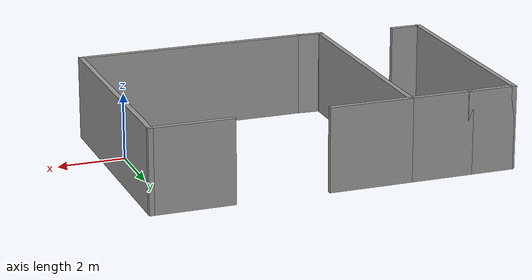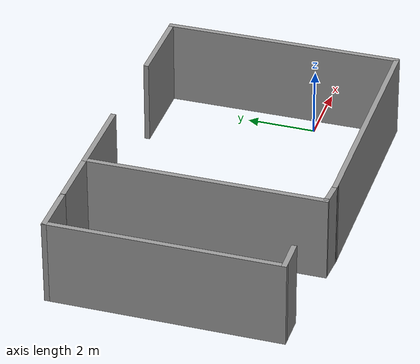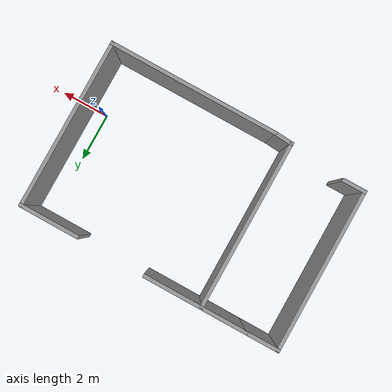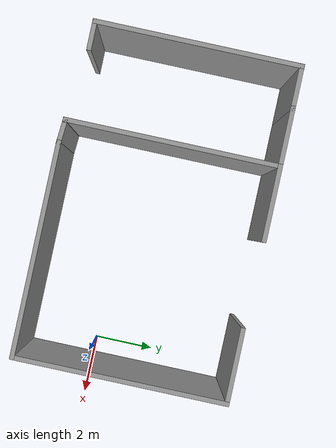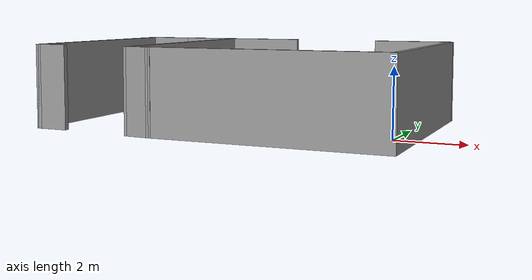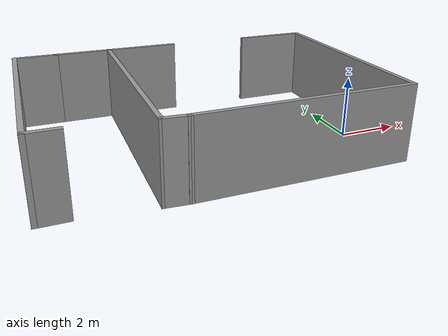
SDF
<?xml version='1.0'?>
<sdf version='1.7'>
  <model name='test_optimisation'>
    <pose>-4.77612 1.17859 0 0 -0 0</pose>
    <link name='Wall_0'>
      <collision name='Wall_0_Collision'>
        <geometry>
          <box>
            <size>7 0.15 2.5</size>
          </box>
        </geometry>
        <pose>0 0 1.25 0 -0 0</pose>
      </collision>
      <visual name='Wall_0_Visual'>
        <pose>0 0 1.25 0 -0 0</pose>
        <geometry>
          <box>
            <size>7 0.15 2.5</size>
          </box>
        </geometry>
        <material>
          <script>
            <uri>file://media/materials/scripts/gazebo.material</uri>
            <name>Gazebo/Grey</name>
          </script>
          <ambient>1 1 1 1</ambient>
        </material>
        <meta>
          <layer>0</layer>
        </meta>
      </visual>
      <pose>1.96112 -3.44859 0 0 -0 0</pose>
    </link>
    <link name='Wall_1'>
      <collision name='Wall_1_Collision'>
        <geometry>
          <box>
            <size>7 0.15 2.5</size>
          </box>
        </geometry>
        <pose>0 0 1.25 0 -0 0</pose>
      </collision>
      <visual name='Wall_1_Visual'>
        <pose>0 0 1.25 0 -0 0</pose>
        <geometry>
          <box>
            <size>7 0.15 2.5</size>
          </box>
        </geometry>
        <material>
          <script>
            <uri>file://media/materials/scripts/gazebo.material</uri>
            <name>Gazebo/Grey</name>
          </script>
          <ambient>1 1 1 1</ambient>
        </material>
        <meta>
          <layer>0</layer>
        </meta>
      </visual>
      <pose>5.38612 -0.023588 0 0 -0 1.5708</pose>
    </link>
    <link name='Wall_10'>
      <collision name='Wall_10_Collision'>
        <geometry>
          <box>
            <size>0.16 0.15 2.5</size>
          </box>
        </geometry>
        <pose>0 0 1.25 0 -0 0</pose>
      </collision>
      <visual name='Wall_10_Visual'>
        <pose>0 0 1.25 0 -0 0</pose>
        <geometry>
          <box>
            <size>0.16 0.15 2.5</size>
          </box>
        </geometry>
        <material>
          <script>
            <uri>file://media/materials/scripts/gazebo.material</uri>
            <name>Gazebo/Grey</name>
          </script>
          <ambient>1 1 1 1</ambient>
        </material>
        <meta>
          <layer>0</layer>
        </meta>
      </visual>
      <pose>-4.04112 3.45382 0 0 -0 0</pose>
    </link>
    <link name='Wall_11'>
      <collision name='Wall_11_Collision'>
        <geometry>
          <box>
            <size>1.5 0.15 2.5</size>
          </box>
        </geometry>
        <pose>0 0 1.25 0 -0 0</pose>
      </collision>
      <visual name='Wall_11_Visual'>
        <pose>0 0 1.25 0 -0 0</pose>
        <geometry>
          <box>
            <size>1.5 0.15 2.5</size>
          </box>
        </geometry>
        <material>
          <script>
            <uri>file://media/materials/scripts/gazebo.material</uri>
            <name>Gazebo/Grey</name>
          </script>
          <ambient>1 1 1 1</ambient>
        </material>
        <meta>
          <layer>0</layer>
        </meta>
      </visual>
      <pose>-4.71112 3.45382 0 0 -0 3.14159</pose>
    </link>
    <link name='Wall_12'>
      <collision name='Wall_12_Collision'>
        <geometry>
          <box>
            <size>6.75 0.15 2.5</size>
          </box>
        </geometry>
        <pose>0 0 1.25 0 -0 0</pose>
      </collision>
      <visual name='Wall_12_Visual'>
        <pose>0 0 1.25 0 -0 0</pose>
        <geometry>
          <box>
            <size>6.75 0.15 2.5</size>
          </box>
        </geometry>
        <material>
          <script>
            <uri>file://media/materials/scripts/gazebo.material</uri>
            <name>Gazebo/Grey</name>
          </script>
          <ambient>1 1 1 1</ambient>
        </material>
        <meta>
          <layer>0</layer>
        </meta>
      </visual>
      <pose>-5.38612 0.153819 0 0 -0 -1.5708</pose>
    </link>
    <link name='Wall_13'>
      <collision name='Wall_13_Collision'>
        <geometry>
          <box>
            <size>1 0.15 2.5</size>
          </box>
        </geometry>
        <pose>0 0 1.25 0 -0 0</pose>
      </collision>
      <visual name='Wall_13_Visual'>
        <pose>0 0 1.25 0 -0 0</pose>
        <geometry>
          <box>
            <size>1 0.15 2.5</size>
          </box>
        </geometry>
        <material>
          <script>
            <uri>file://media/materials/scripts/gazebo.material</uri>
            <name>Gazebo/Grey</name>
          </script>
          <ambient>1 1 1 1</ambient>
        </material>
        <meta>
          <layer>0</layer>
        </meta>
      </visual>
      <pose>-4.96112 -3.14618 0 0 -0 0</pose>
    </link>
    <link name='Wall_2'>
      <collision name='Wall_2_Collision'>
        <geometry>
          <box>
            <size>2.5 0.15 2.5</size>
          </box>
        </geometry>
        <pose>0 0 1.25 0 -0 0</pose>
      </collision>
      <visual name='Wall_2_Visual'>
        <pose>0 0 1.25 0 -0 0</pose>
        <geometry>
          <box>
            <size>2.5 0.15 2.5</size>
          </box>
        </geometry>
        <material>
          <script>
            <uri>file://media/materials/scripts/gazebo.material</uri>
            <name>Gazebo/Grey</name>
          </script>
          <ambient>1 1 1 1</ambient>
        </material>
        <meta>
          <layer>0</layer>
        </meta>
      </visual>
      <pose>4.21112 3.40141 0 0 -0 3.14159</pose>
    </link>
    <link name='Wall_4'>
      <collision name='Wall_4_Collision'>
        <geometry>
          <box>
            <size>2.5 0.15 2.5</size>
          </box>
        </geometry>
        <pose>0 0 1.25 0 -0 0</pose>
      </collision>
      <visual name='Wall_4_Visual'>
        <pose>0 0 1.25 0 -0 0</pose>
        <geometry>
          <box>
            <size>2.5 0.15 2.5</size>
          </box>
        </geometry>
        <material>
          <script>
            <uri>file://media/materials/scripts/gazebo.material</uri>
            <name>Gazebo/Grey</name>
          </script>
          <ambient>1 1 1 1</ambient>
        </material>
        <meta>
          <layer>0</layer>
        </meta>
      </visual>
      <pose>-1.02112 3.45382 0 0 -0 3.14159</pose>
    </link>
    <link name='Wall_5'>
      <collision name='Wall_5_Collision'>
        <geometry>
          <box>
            <size>7 0.15 2.5</size>
          </box>
        </geometry>
        <pose>0 0 1.25 0 -0 0</pose>
      </collision>
      <visual name='Wall_5_Visual'>
        <pose>0 0 1.25 0 -0 0</pose>
        <geometry>
          <box>
            <size>7 0.15 2.5</size>
          </box>
        </geometry>
        <material>
          <script>
            <uri>file://media/materials/scripts/gazebo.material</uri>
            <name>Gazebo/Grey</name>
          </script>
          <ambient>1 1 1 1</ambient>
        </material>
        <meta>
          <layer>0</layer>
        </meta>
      </visual>
      <pose>-2.19612 0.028819 0 0 -0 -1.5708</pose>
    </link>
    <link name='Wall_6'>
      <collision name='Wall_6_Collision'>
        <geometry>
          <box>
            <size>0.16 0.15 2.5</size>
          </box>
        </geometry>
        <pose>0 0 1.25 0 -0 0</pose>
      </collision>
      <visual name='Wall_6_Visual'>
        <pose>0 0 1.25 0 -0 0</pose>
        <geometry>
          <box>
            <size>0.16 0.15 2.5</size>
          </box>
        </geometry>
        <material>
          <script>
            <uri>file://media/materials/scripts/gazebo.material</uri>
            <name>Gazebo/Grey</name>
          </script>
          <ambient>1 1 1 1</ambient>
        </material>
        <meta>
          <layer>0</layer>
        </meta>
      </visual>
      <pose>-2.19112 -3.39618 0 0 -0 0</pose>
    </link>
    <link name='Wall_7'>
      <collision name='Wall_7_Collision'>
        <geometry>
          <box>
            <size>0.87414 0.15 2.5</size>
          </box>
        </geometry>
        <pose>0 0 1.25 0 -0 0</pose>
      </collision>
      <visual name='Wall_7_Visual'>
        <pose>0 0 1.25 0 -0 0</pose>
        <geometry>
          <box>
            <size>0.87414 0.15 2.5</size>
          </box>
        </geometry>
        <material>
          <script>
            <uri>file://media/materials/scripts/gazebo.material</uri>
            <name>Gazebo/Grey</name>
          </script>
          <ambient>1 1 1 1</ambient>
        </material>
        <meta>
          <layer>0</layer>
        </meta>
      </visual>
      <pose>-1.825 -3.42238 0 0 -0 -0.072434</pose>
    </link>
    <link name='Wall_9'>
      <collision name='Wall_9_Collision'>
        <geometry>
          <box>
            <size>2 0.15 2.5</size>
          </box>
        </geometry>
        <pose>0 0 1.25 0 -0 0</pose>
      </collision>
      <visual name='Wall_9_Visual'>
        <pose>0 0 1.25 0 -0 0</pose>
        <geometry>
          <box>
            <size>2 0.15 2.5</size>
          </box>
        </geometry>
        <material>
          <script>
            <uri>file://media/materials/scripts/gazebo.material</uri>
            <name>Gazebo/Grey</name>
          </script>
          <ambient>1 1 1 1</ambient>
        </material>
        <meta>
          <layer>0</layer>
        </meta>
      </visual>
      <pose>-3.12112 3.45382 0 0 -0 3.14159</pose>
    </link>
    <static>1</static>
  </model>
</sdf>
